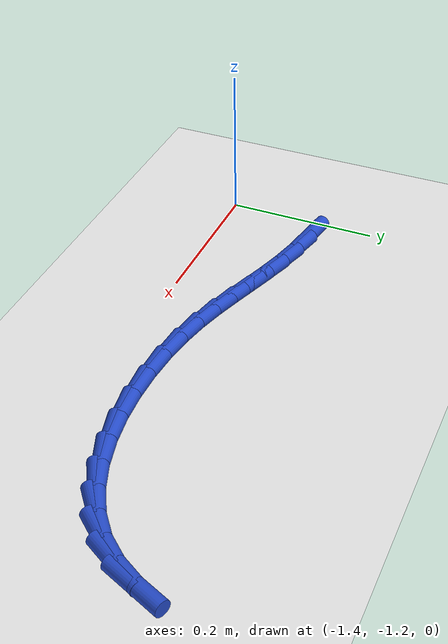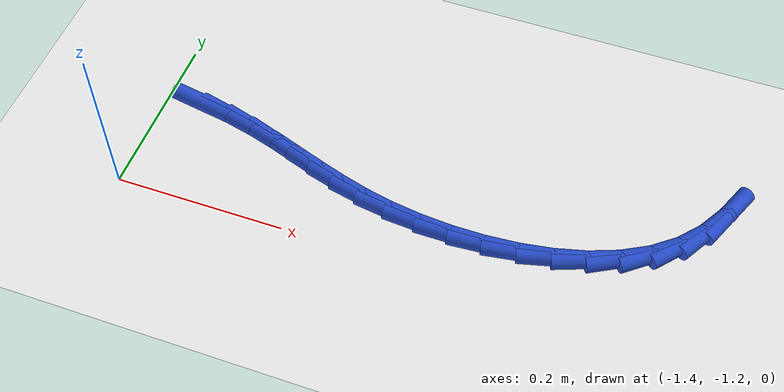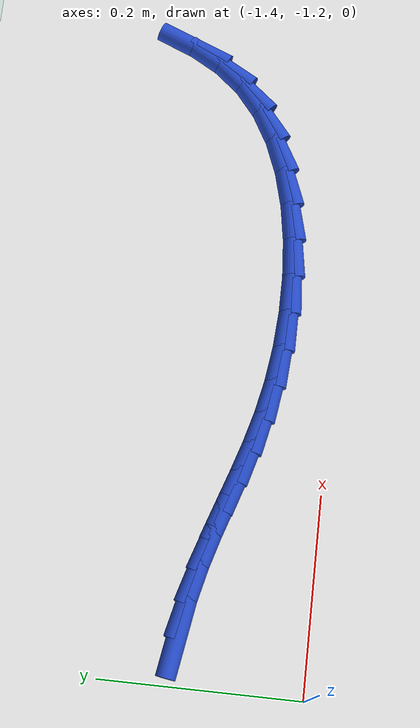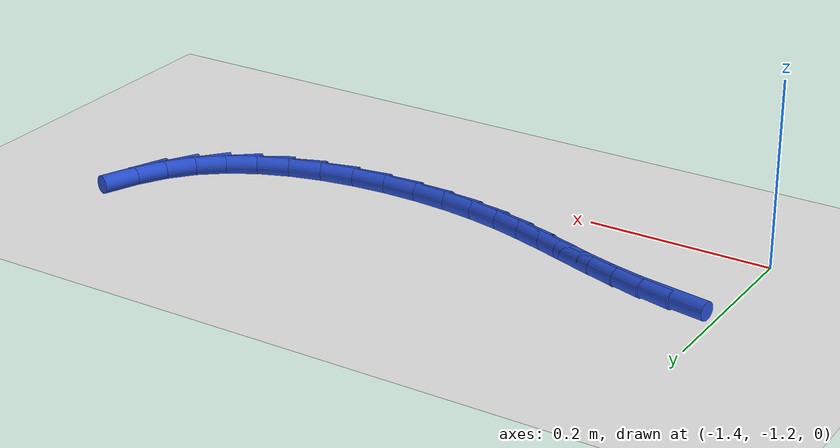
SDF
<sdf version="1.6">
 <world name="default">
  <model name="ground_plane">
   <static>1</static>
   <link name="link">
    <collision name="collision">
     <geometry><plane><normal>0 0 1</normal><size>100 100</size></plane></geometry>
     <surface><friction><ode><mu>100</mu><mu2>50</mu2></ode></friction></surface>
    </collision>
    <visual name="visual">
     <cast_shadows>0</cast_shadows>
     <geometry><plane><normal>0 0 1</normal><size>100 100</size></plane></geometry>
     <material>
      <script><uri>file://media/materials/scripts/gazebo.material</uri><name>Gazebo/WhiteGlow</name></script>
     </material>
    </visual>
   </link>
  </model>
  <model name="line">
   <link name="link_182">
    <pose>-1.3531695886622634 -1.072743357773095 0.01 0 1.57 -0.16487997922328937</pose>
    <collision name="collision">
     <geometry><cylinder><radius>0.01</radius><length>0.08</length></cylinder></geometry>
    </collision>
    <visual name="visual">
     <material>
      <script><name>Gazebo/Blue</name><uri>file://media/materials/scripts/gazebo.material</uri></script>
     </material>
     <geometry><cylinder><radius>0.01</radius><length>0.08</length></cylinder></geometry>
    </visual>
   </link>
   <link name="link_183">
    <pose>-1.316281388182058 -1.07888120452208 0.01 0 1.57 -0.2329631985650397</pose>
    <collision name="collision">
     <geometry><cylinder><radius>0.01</radius><length>0.08</length></cylinder></geometry>
    </collision>
    <visual name="visual">
     <material>
      <script><name>Gazebo/Blue</name><uri>file://media/materials/scripts/gazebo.material</uri></script>
     </material>
     <geometry><cylinder><radius>0.01</radius><length>0.08</length></cylinder></geometry>
    </visual>
   </link>
   <link name="link_184">
    <pose>-1.2823756643916862 -1.086926056020564 0.01 0 1.57 -0.28657765701855314</pose>
    <collision name="collision">
     <geometry><cylinder><radius>0.01</radius><length>0.08</length></cylinder></geometry>
    </collision>
    <visual name="visual">
     <material>
      <script><name>Gazebo/Blue</name><uri>file://media/materials/scripts/gazebo.material</uri></script>
     </material>
     <geometry><cylinder><radius>0.01</radius><length>0.08</length></cylinder></geometry>
    </visual>
   </link>
   <link name="link_185">
    <pose>-1.2506006138864953 -1.0962898288534653 0.01 0 1.57 -0.31966016782012163</pose>
    <collision name="collision">
     <geometry><cylinder><radius>0.01</radius><length>0.08</length></cylinder></geometry>
    </collision>
    <visual name="visual">
     <material>
      <script><name>Gazebo/Blue</name><uri>file://media/materials/scripts/gazebo.material</uri></script>
     </material>
     <geometry><cylinder><radius>0.01</radius><length>0.08</length></cylinder></geometry>
    </visual>
   </link>
   <link name="link_186">
    <pose>-1.220104433261837 -1.106384439605701 0.01 0 1.57 -0.3281518158774015</pose>
    <collision name="collision">
     <geometry><cylinder><radius>0.01</radius><length>0.08</length></cylinder></geometry>
    </collision>
    <visual name="visual">
     <material>
      <script><name>Gazebo/Blue</name><uri>file://media/materials/scripts/gazebo.material</uri></script>
     </material>
     <geometry><cylinder><radius>0.01</radius><length>0.08</length></cylinder></geometry>
    </visual>
   </link>
   <link name="link_187">
    <pose>-1.19003531911306 -1.1166218048621905 0.01 0 1.57 -0.31071414634925254</pose>
    <collision name="collision">
     <geometry><cylinder><radius>0.01</radius><length>0.08</length></cylinder></geometry>
    </collision>
    <visual name="visual">
     <material>
      <script><name>Gazebo/Blue</name><uri>file://media/materials/scripts/gazebo.material</uri></script>
     </material>
     <geometry><cylinder><radius>0.01</radius><length>0.08</length></cylinder></geometry>
    </visual>
   </link>
   <link name="link_188">
    <pose>-1.1595414680355132 -1.1264138412078517 0.01 0 1.57 -0.2690030455266663</pose>
    <collision name="collision">
     <geometry><cylinder><radius>0.01</radius><length>0.08</length></cylinder></geometry>
    </collision>
    <visual name="visual">
     <material>
      <script><name>Gazebo/Blue</name><uri>file://media/materials/scripts/gazebo.material</uri></script>
     </material>
     <geometry><cylinder><radius>0.01</radius><length>0.08</length></cylinder></geometry>
    </visual>
   </link>
   <link name="link_189">
    <pose>-1.1277710766245457 -1.1351724652276025 0.01 0 1.57 -0.20760183687877093</pose>
    <collision name="collision">
     <geometry><cylinder><radius>0.01</radius><length>0.08</length></cylinder></geometry>
    </collision>
    <visual name="visual">
     <material>
      <script><name>Gazebo/Blue</name><uri>file://media/materials/scripts/gazebo.material</uri></script>
     </material>
     <geometry><cylinder><radius>0.01</radius><length>0.08</length></cylinder></geometry>
    </visual>
   </link>
   <link name="link_190">
    <pose>-1.0938802269291823 -1.1423111188998634 0.01 0 1.57 -0.138247907764333</pose>
    <collision name="collision">
     <geometry><cylinder><radius>0.01</radius><length>0.08</length></cylinder></geometry>
    </collision>
    <visual name="visual">
     <material>
      <script><name>Gazebo/Blue</name><uri>file://media/materials/scripts/gazebo.material</uri></script>
     </material>
     <geometry><cylinder><radius>0.01</radius><length>0.08</length></cylinder></geometry>
    </visual>
   </link>
   <link name="link_191">
    <pose>-1.0576135612866941 -1.1473570976445846 0.01 0 1.57 -0.07034323854654943</pose>
    <collision name="collision">
     <geometry><cylinder><radius>0.01</radius><length>0.08</length></cylinder></geometry>
    </collision>
    <visual name="visual">
     <material>
      <script><name>Gazebo/Blue</name><uri>file://media/materials/scripts/gazebo.material</uri></script>
     </material>
     <geometry><cylinder><radius>0.01</radius><length>0.08</length></cylinder></geometry>
    </visual>
   </link>
   <link name="link_192">
    <pose>-1.0197013959397747 -1.1500283695597784 0.01 0 1.57 -0.0008446186631925733</pose>
    <collision name="collision">
     <geometry><cylinder><radius>0.01</radius><length>0.08</length></cylinder></geometry>
    </collision>
    <visual name="visual">
     <material>
      <script><name>Gazebo/Blue</name><uri>file://media/materials/scripts/gazebo.material</uri></script>
     </material>
     <geometry><cylinder><radius>0.01</radius><length>0.08</length></cylinder></geometry>
    </visual>
   </link>
   <link name="link_193">
    <pose>-0.980968036835962 -1.150061084485545 0.01 0 1.57 0.07395919656971231</pose>
    <collision name="collision">
     <geometry><cylinder><radius>0.01</radius><length>0.08</length></cylinder></geometry>
    </collision>
    <visual name="visual">
     <material>
      <script><name>Gazebo/Blue</name><uri>file://media/materials/scripts/gazebo.material</uri></script>
     </material>
     <geometry><cylinder><radius>0.01</radius><length>0.08</length></cylinder></geometry>
    </visual>
   </link>
   <link name="link_194">
    <pose>-0.9422377899227891 -1.1471913922619852 0.01 0 1.57 0.15792194325396428</pose>
    <collision name="collision">
     <geometry><cylinder><radius>0.01</radius><length>0.08</length></cylinder></geometry>
    </collision>
    <visual name="visual">
     <material>
      <script><name>Gazebo/Blue</name><uri>file://media/materials/scripts/gazebo.material</uri></script>
     </material>
     <geometry><cylinder><radius>0.01</radius><length>0.08</length></cylinder></geometry>
    </visual>
   </link>
   <link name="link_195">
    <pose>-0.9043349611477912 -1.1411554427291992 0.01 0 1.57 0.25542120675690155</pose>
    <collision name="collision">
     <geometry><cylinder><radius>0.01</radius><length>0.08</length></cylinder></geometry>
    </collision>
    <visual name="visual">
     <material>
      <script><name>Gazebo/Blue</name><uri>file://media/materials/scripts/gazebo.material</uri></script>
     </material>
     <geometry><cylinder><radius>0.01</radius><length>0.08</length></cylinder></geometry>
    </visual>
   </link>
   <link name="link_196">
    <pose>-0.8680838564585035 -1.1316893857272872 0.01 0 1.57 0.3715408520866287</pose>
    <collision name="collision">
     <geometry><cylinder><radius>0.01</radius><length>0.08</length></cylinder></geometry>
    </collision>
    <visual name="visual">
     <material>
      <script><name>Gazebo/Blue</name><uri>file://media/materials/scripts/gazebo.material</uri></script>
     </material>
     <geometry><cylinder><radius>0.01</radius><length>0.08</length></cylinder></geometry>
    </visual>
   </link>
   <link name="link_197">
    <pose>-0.8343087818024606 -1.1185293710963495 0.01 0 1.57 0.5117855710316547</pose>
    <collision name="collision">
     <geometry><cylinder><radius>0.01</radius><length>0.08</length></cylinder></geometry>
    </collision>
    <visual name="visual">
     <material>
      <script><name>Gazebo/Blue</name><uri>file://media/materials/scripts/gazebo.material</uri></script>
     </material>
     <geometry><cylinder><radius>0.01</radius><length>0.08</length></cylinder></geometry>
    </visual>
   </link>
   <link name="link_198">
    <pose>-0.8038340431271976 -1.1014115486764873 0.01 0 1.57 0.6807149137283396</pose>
    <collision name="collision">
     <geometry><cylinder><radius>0.01</radius><length>0.08</length></cylinder></geometry>
    </collision>
    <visual name="visual">
     <material>
      <script><name>Gazebo/Blue</name><uri>file://media/materials/scripts/gazebo.material</uri></script>
     </material>
     <geometry><cylinder><radius>0.01</radius><length>0.08</length></cylinder></geometry>
    </visual>
   </link>
   <link name="link_199">
    <pose>-0.7774839463802495 -1.0800720683078004 0.01 0 1.57 0.8747023000314896</pose>
    <collision name="collision">
     <geometry><cylinder><radius>0.01</radius><length>0.08</length></cylinder></geometry>
    </collision>
    <visual name="visual">
     <material>
      <script><name>Gazebo/Blue</name><uri>file://media/materials/scripts/gazebo.material</uri></script>
     </material>
     <geometry><cylinder><radius>0.01</radius><length>0.08</length></cylinder></geometry>
    </visual>
   </link>
   <link name="link_200">
    <pose>-0.7559655947010477 -1.0543211140986988 0.01 0 1.57 1.049490660205328</pose>
    <collision name="collision">
     <geometry><cylinder><radius>0.01</radius><length>0.08</length></cylinder></geometry>
    </collision>
    <visual name="visual">
     <material>
      <script><name>Gazebo/Blue</name><uri>file://media/materials/scripts/gazebo.material</uri></script>
     </material>
     <geometry><cylinder><radius>0.01</radius><length>0.08</length></cylinder></geometry>
    </visual>
   </link>
   <link name="link_201">
    <pose>-0.7389208387699618 -1.0246417651816089 0.01 0 1.57 1.1800384421148702</pose>
    <collision name="collision">
     <geometry><cylinder><radius>0.01</radius><length>0.08</length></cylinder></geometry>
    </collision>
    <visual name="visual">
     <material>
      <script><name>Gazebo/Blue</name><uri>file://media/materials/scripts/gazebo.material</uri></script>
     </material>
     <geometry><cylinder><radius>0.01</radius><length>0.08</length></cylinder></geometry>
    </visual>
   </link>
  </model>
 </world>
</sdf>
